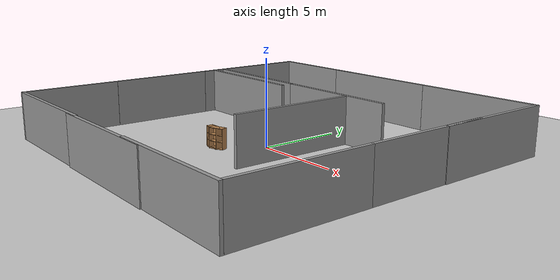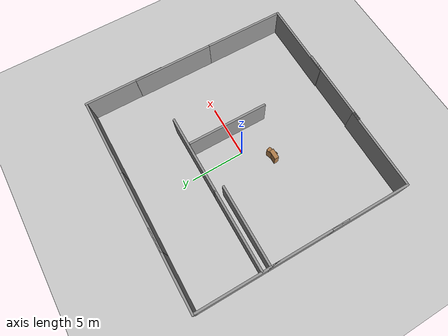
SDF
<sdf version="1.7">
 <world name="default">
  <light name="sun" type="directional">
   <pose>0 0 10 0 -0 0</pose>
   <diffuse>0.8 0.8 0.8 1</diffuse>
   <specular>0.2 0.2 0.2 1</specular>
   <attenuation>
    <range>1000</range>
    <constant>0.9</constant>
    <linear>0.01</linear>
    <quadratic>0.001</quadratic>
   </attenuation>
   <direction>-0.5 0.1 -0.9</direction>
   <spot><inner_angle>0</inner_angle><outer_angle>0</outer_angle><falloff>0</falloff></spot>
  </light>
  <model name="ground_plane">
   <static>1</static>
   <link name="link">
    <collision name="collision">
     <geometry><plane><normal>0 0 1</normal><size>100 100</size></plane></geometry>
     <surface>
      <contact><collide_bitmask>65535</collide_bitmask></contact>
      <friction><ode><mu>100</mu><mu2>50</mu2></ode></friction>
     </surface>
    </collision>
    <visual name="visual">
     <cast_shadows>0</cast_shadows>
     <geometry><plane><normal>0 0 1</normal><size>100 100</size></plane></geometry>
     <material>
      <script><uri>file://media/materials/scripts/gazebo.material</uri><name>Gazebo/Grey</name></script>
     </material>
    </visual>
   </link>
  </model>
  <gravity>0 0 -9.8</gravity>
  <magnetic_field>6e-06 2.3e-05 -4.2e-05</magnetic_field>
  <atmosphere type="adiabatic"/>
  <physics type="ode">
   <max_step_size>0.001</max_step_size>
   <real_time_factor>1</real_time_factor>
   <real_time_update_rate>1000</real_time_update_rate>
  </physics>
  <scene><ambient>0.4 0.4 0.4 1</ambient><background>0.7 0.7 0.7 1</background><shadows>1</shadows></scene>
  <audio><device>default</device></audio>
  <spherical_coordinates>
   <surface_model>EARTH_WGS84</surface_model>
   <latitude_deg>0</latitude_deg>
   <longitude_deg>0</longitude_deg>
   <elevation>0</elevation>
   <heading_deg>0</heading_deg>
  </spherical_coordinates>
  <model name="grey_wall_6">
   <static>1</static>
   <link name="link">
    <pose>0 0 1.4 0 -0 0</pose>
    <collision name="collision"><geometry><box><size>7.5 0.2 2.8</size></box></geometry></collision>
    <visual name="visual">
     <cast_shadows>0</cast_shadows>
     <geometry><box><size>7.5 0.2 2.8</size></box></geometry>
     <material>
      <script>
       <uri>model://grey_wall/materials/scripts</uri>
       <uri>model://grey_wall/materials/textures</uri>
       <name>vrc/grey_wall</name>
      </script>
     </material>
    </visual>
   </link>
   <pose>-6.23831 10.0107 0 0 -0 0</pose>
  </model>
  <model name="grey_wall_6_clone">
   <static>1</static>
   <link name="link">
    <pose>0 0 1.4 0 -0 0</pose>
    <collision name="collision"><geometry><box><size>7.5 0.2 2.8</size></box></geometry></collision>
    <visual name="visual">
     <cast_shadows>0</cast_shadows>
     <geometry><box><size>7.5 0.2 2.8</size></box></geometry>
     <material>
      <script>
       <uri>model://grey_wall/materials/scripts</uri>
       <uri>model://grey_wall/materials/textures</uri>
       <name>vrc/grey_wall</name>
      </script>
     </material>
    </visual>
   </link>
   <pose>-1.00433 10.0016 0 0 -0 0</pose>
  </model>
  <model name="grey_wall_1_clone">
   <static>1</static>
   <link name="link">
    <pose>0 0 1.4 0 -0 0</pose>
    <collision name="collision"><geometry><box><size>7.5 0.2 2.8</size></box></geometry></collision>
    <visual name="visual">
     <cast_shadows>0</cast_shadows>
     <geometry><box><size>7.5 0.2 2.8</size></box></geometry>
     <material>
      <script>
       <uri>model://grey_wall/materials/scripts</uri>
       <uri>model://grey_wall/materials/textures</uri>
       <name>vrc/grey_wall</name>
      </script>
     </material>
    </visual>
   </link>
   <pose>-9.99806 -0.262151 0 0 0 -1.5814</pose>
  </model>
  <model name="grey_wall_1_clone_clone">
   <static>1</static>
   <link name="link">
    <pose>0 0 1.4 0 -0 0</pose>
    <collision name="collision"><geometry><box><size>7.5 0.2 2.8</size></box></geometry></collision>
    <visual name="visual">
     <cast_shadows>0</cast_shadows>
     <geometry><box><size>7.5 0.2 2.8</size></box></geometry>
     <material>
      <script>
       <uri>model://grey_wall/materials/scripts</uri>
       <uri>model://grey_wall/materials/textures</uri>
       <name>vrc/grey_wall</name>
      </script>
     </material>
    </visual>
   </link>
   <pose>-10.0661 -6.15561 0 0 0 -1.5814</pose>
  </model>
  <model name="grey_wall_6_clone_0">
   <static>1</static>
   <link name="link">
    <pose>0 0 1.4 0 -0 0</pose>
    <collision name="collision"><geometry><box><size>7.5 0.2 2.8</size></box></geometry></collision>
    <visual name="visual">
     <cast_shadows>0</cast_shadows>
     <geometry><box><size>7.5 0.2 2.8</size></box></geometry>
     <material>
      <script>
       <uri>model://grey_wall/materials/scripts</uri>
       <uri>model://grey_wall/materials/textures</uri>
       <name>vrc/grey_wall</name>
      </script>
     </material>
    </visual>
   </link>
   <pose>-6.28155 -9.81063 0 0 -0 0</pose>
  </model>
  <model name="grey_wall_6_clone_0_clone">
   <static>1</static>
   <link name="link">
    <pose>0 0 1.4 0 -0 0</pose>
    <collision name="collision"><geometry><box><size>7.5 0.2 2.8</size></box></geometry></collision>
    <visual name="visual">
     <cast_shadows>0</cast_shadows>
     <geometry><box><size>7.5 0.2 2.8</size></box></geometry>
     <material>
      <script>
       <uri>model://grey_wall/materials/scripts</uri>
       <uri>model://grey_wall/materials/textures</uri>
       <name>vrc/grey_wall</name>
      </script>
     </material>
    </visual>
   </link>
   <pose>0.394006 -9.87734 0 0 -0 0</pose>
  </model>
  <model name="grey_wall_6_clone_0_clone_clone">
   <static>1</static>
   <link name="link">
    <pose>0 0 1.4 0 -0 0</pose>
    <collision name="collision"><geometry><box><size>7.5 0.2 2.8</size></box></geometry></collision>
    <visual name="visual">
     <cast_shadows>0</cast_shadows>
     <geometry><box><size>7.5 0.2 2.8</size></box></geometry>
     <material>
      <script>
       <uri>model://grey_wall/materials/scripts</uri>
       <uri>model://grey_wall/materials/textures</uri>
       <name>vrc/grey_wall</name>
      </script>
     </material>
    </visual>
   </link>
   <pose>6.20069 -9.81461 0 0 -0 0</pose>
  </model>
  <model name="grey_wall_1_clone_clone_clone">
   <static>1</static>
   <link name="link">
    <pose>0 0 1.4 0 -0 0</pose>
    <collision name="collision"><geometry><box><size>7.5 0.2 2.8</size></box></geometry></collision>
    <visual name="visual">
     <cast_shadows>0</cast_shadows>
     <geometry><box><size>7.5 0.2 2.8</size></box></geometry>
     <material>
      <script>
       <uri>model://grey_wall/materials/scripts</uri>
       <uri>model://grey_wall/materials/textures</uri>
       <name>vrc/grey_wall</name>
      </script>
     </material>
    </visual>
   </link>
   <pose>9.8912 -5.98839 0 0 0 -1.5814</pose>
  </model>
  <model name="grey_wall_1_clone_clone_clone_clone">
   <static>1</static>
   <link name="link">
    <pose>0 0 1.4 0 -0 0</pose>
    <collision name="collision"><geometry><box><size>7.5 0.2 2.8</size></box></geometry></collision>
    <visual name="visual">
     <cast_shadows>0</cast_shadows>
     <geometry><box><size>7.5 0.2 2.8</size></box></geometry>
     <material>
      <script>
       <uri>model://grey_wall/materials/scripts</uri>
       <uri>model://grey_wall/materials/textures</uri>
       <name>vrc/grey_wall</name>
      </script>
     </material>
    </visual>
   </link>
   <pose>9.96544 1.47963 0 0 0 -1.5814</pose>
  </model>
  <model name="grey_wall_1_clone_clone_clone_clone_clone">
   <static>1</static>
   <link name="link">
    <pose>0 0 1.4 0 -0 0</pose>
    <collision name="collision"><geometry><box><size>7.5 0.2 2.8</size></box></geometry></collision>
    <visual name="visual">
     <cast_shadows>0</cast_shadows>
     <geometry><box><size>7.5 0.2 2.8</size></box></geometry>
     <material>
      <script>
       <uri>model://grey_wall/materials/scripts</uri>
       <uri>model://grey_wall/materials/textures</uri>
       <name>vrc/grey_wall</name>
      </script>
     </material>
    </visual>
   </link>
   <pose>10.049 6.3613 0 0 0 -1.5814</pose>
  </model>
  <model name="grey_wall_6_clone_clone">
   <static>1</static>
   <link name="link">
    <pose>0 0 1.4 0 -0 0</pose>
    <collision name="collision"><geometry><box><size>7.5 0.2 2.8</size></box></geometry></collision>
    <visual name="visual">
     <cast_shadows>0</cast_shadows>
     <geometry><box><size>7.5 0.2 2.8</size></box></geometry>
     <material>
      <script>
       <uri>model://grey_wall/materials/scripts</uri>
       <uri>model://grey_wall/materials/textures</uri>
       <name>vrc/grey_wall</name>
      </script>
     </material>
    </visual>
   </link>
   <pose>6.43238 10.0043 0 0 -0 0</pose>
  </model>
  <model name="grey_wall_6_clone_1">
   <static>1</static>
   <link name="link">
    <pose>0 0 1.4 0 -0 0</pose>
    <collision name="collision"><geometry><box><size>7.5 0.2 2.8</size></box></geometry></collision>
    <visual name="visual">
     <cast_shadows>0</cast_shadows>
     <geometry><box><size>7.5 0.2 2.8</size></box></geometry>
     <material>
      <script>
       <uri>model://grey_wall/materials/scripts</uri>
       <uri>model://grey_wall/materials/textures</uri>
       <name>vrc/grey_wall</name>
      </script>
     </material>
    </visual>
   </link>
   <pose>-6.22371 4.03713 0 0 -0 0</pose>
  </model>
  <model name="grey_wall_6_clone_1_clone">
   <static>1</static>
   <link name="link">
    <pose>0 0 1.4 0 -0 0</pose>
    <collision name="collision"><geometry><box><size>7.5 0.2 2.8</size></box></geometry></collision>
    <visual name="visual">
     <cast_shadows>0</cast_shadows>
     <geometry><box><size>7.5 0.2 2.8</size></box></geometry>
     <material>
      <script>
       <uri>model://grey_wall/materials/scripts</uri>
       <uri>model://grey_wall/materials/textures</uri>
       <name>vrc/grey_wall</name>
      </script>
     </material>
    </visual>
   </link>
   <pose>1.1226 4.0313 0 0 -0 0</pose>
  </model>
  <model name="grey_wall_1_clone_clone_clone_clone_clone_0">
   <static>1</static>
   <link name="link">
    <pose>0 0 1.4 0 -0 0</pose>
    <collision name="collision"><geometry><box><size>7.5 0.2 2.8</size></box></geometry></collision>
    <visual name="visual">
     <cast_shadows>0</cast_shadows>
     <geometry><box><size>7.5 0.2 2.8</size></box></geometry>
     <material>
      <script>
       <uri>model://grey_wall/materials/scripts</uri>
       <uri>model://grey_wall/materials/textures</uri>
       <name>vrc/grey_wall</name>
      </script>
     </material>
    </visual>
   </link>
   <pose>2.10454 0.159477 0 0 0 -1.5814</pose>
  </model>
  <model name="grey_wall_1_clone_0">
   <static>1</static>
   <link name="link">
    <pose>0 0 1.4 0 -0 0</pose>
    <collision name="collision"><geometry><box><size>7.5 0.2 2.8</size></box></geometry></collision>
    <visual name="visual">
     <cast_shadows>0</cast_shadows>
     <geometry><box><size>7.5 0.2 2.8</size></box></geometry>
     <material>
      <script>
       <uri>model://grey_wall/materials/scripts</uri>
       <uri>model://grey_wall/materials/textures</uri>
       <name>vrc/grey_wall</name>
      </script>
     </material>
    </visual>
   </link>
   <pose>-6.27914 3.27804 0 0 -0 0</pose>
  </model>
  <model name="grey_wall_1_clone_clone_0">
   <static>1</static>
   <link name="link">
    <pose>0 0 1.4 0 -0 0</pose>
    <collision name="collision"><geometry><box><size>7.5 0.2 2.8</size></box></geometry></collision>
    <visual name="visual">
     <cast_shadows>0</cast_shadows>
     <geometry><box><size>7.5 0.2 2.8</size></box></geometry>
     <material>
      <script>
       <uri>model://grey_wall/materials/scripts</uri>
       <uri>model://grey_wall/materials/textures</uri>
       <name>vrc/grey_wall</name>
      </script>
     </material>
    </visual>
   </link>
   <pose>-9.92841 6.17314 0 0 0 -1.5814</pose>
  </model>
  <model name="bookshelf">
   <static>1</static>
   <link name="link">
    <inertial><mass>1</mass></inertial>
    <collision name="back">
     <pose>0 0.005 0.6 0 -0 0</pose>
     <geometry><box><size>0.9 0.01 1.2</size></box></geometry>
    </collision>
    <visual name="visual1">
     <pose>0 0.005 0.6 0 -0 0</pose>
     <geometry><box><size>0.9 0.01 1.2</size></box></geometry>
     <material>
      <script><uri>file://media/materials/scripts/gazebo.material</uri><name>Gazebo/Wood</name></script>
     </material>
    </visual>
    <collision name="left_side">
     <pose>0.45 -0.195 0.6 0 -0 0</pose>
     <geometry><box><size>0.02 0.4 1.2</size></box></geometry>
    </collision>
    <visual name="visual2">
     <pose>0.45 -0.195 0.6 0 -0 0</pose>
     <geometry><box><size>0.02 0.4 1.2</size></box></geometry>
     <material>
      <script><uri>file://media/materials/scripts/gazebo.material</uri><name>Gazebo/Wood</name></script>
     </material>
    </visual>
    <collision name="right_side">
     <pose>-0.45 -0.195 0.6 0 -0 0</pose>
     <geometry><box><size>0.02 0.4 1.2</size></box></geometry>
    </collision>
    <visual name="visual3">
     <pose>-0.45 -0.195 0.6 0 -0 0</pose>
     <geometry><box><size>0.02 0.4 1.2</size></box></geometry>
     <material>
      <script><uri>file://media/materials/scripts/gazebo.material</uri><name>Gazebo/Wood</name></script>
     </material>
    </visual>
    <collision name="bottom">
     <pose>0 -0.195 0.03 0 -0 0</pose>
     <geometry><box><size>0.88 0.4 0.06</size></box></geometry>
    </collision>
    <visual name="visual4">
     <pose>0 -0.195 0.03 0 -0 0</pose>
     <geometry><box><size>0.88 0.4 0.06</size></box></geometry>
     <material>
      <script><uri>file://media/materials/scripts/gazebo.material</uri><name>Gazebo/Wood</name></script>
     </material>
    </visual>
    <collision name="top">
     <pose>0 -0.195 1.19 0 -0 0</pose>
     <geometry><box><size>0.88 0.4 0.02</size></box></geometry>
    </collision>
    <visual name="visual5">
     <pose>0 -0.195 1.19 0 -0 0</pose>
     <geometry><box><size>0.88 0.4 0.02</size></box></geometry>
     <material>
      <script><uri>file://media/materials/scripts/gazebo.material</uri><name>Gazebo/Wood</name></script>
     </material>
    </visual>
    <collision name="low_shelf">
     <pose>0 -0.195 0.43 0 -0 0</pose>
     <geometry><box><size>0.88 0.4 0.02</size></box></geometry>
    </collision>
    <visual name="visual6">
     <pose>0 -0.195 0.43 0 -0 0</pose>
     <geometry><box><size>0.88 0.4 0.02</size></box></geometry>
     <material>
      <script><uri>file://media/materials/scripts/gazebo.material</uri><name>Gazebo/Wood</name></script>
     </material>
    </visual>
    <collision name="high_shelf">
     <pose>0 -0.195 0.8 0 -0 0</pose>
     <geometry><box><size>0.88 0.4 0.02</size></box></geometry>
    </collision>
    <visual name="visual7">
     <pose>0 -0.195 0.8 0 -0 0</pose>
     <geometry><box><size>0.88 0.4 0.02</size></box></geometry>
     <material>
      <script><uri>file://media/materials/scripts/gazebo.material</uri><name>Gazebo/Wood</name></script>
     </material>
    </visual>
   </link>
   <pose>-1.86682 -2.02438 0 0 -0 0</pose>
  </model>
  <model name="Apriltag36_11_00000">
   <link name="main">
    <visual name="main_Visual">
     <geometry><box><size>0.15 0.15 0.01</size></box></geometry>
     <material>
      <script>
       <uri>model://Apriltag36_11_00000/materials/scripts</uri>
       <uri>model://Apriltag36_11_00000/materials/textures</uri>
       <name>Apriltag36_11_00000</name>
      </script>
     </material>
    </visual>
   </link>
   <static>1</static>
   <pose>-1.85509 -2.01935 0.2 -1.57079 1.57079 3.14159</pose>
  </model>
  <model name="bookshelf_0">
   <static>1</static>
   <link name="link">
    <inertial><mass>1</mass></inertial>
    <collision name="back">
     <pose>0 0.005 0.6 0 -0 0</pose>
     <geometry><box><size>0.9 0.01 1.2</size></box></geometry>
    </collision>
    <visual name="visual1">
     <pose>0 0.005 0.6 0 -0 0</pose>
     <geometry><box><size>0.9 0.01 1.2</size></box></geometry>
     <material>
      <script><uri>file://media/materials/scripts/gazebo.material</uri><name>Gazebo/Wood</name></script>
     </material>
    </visual>
    <collision name="left_side">
     <pose>0.45 -0.195 0.6 0 -0 0</pose>
     <geometry><box><size>0.02 0.4 1.2</size></box></geometry>
    </collision>
    <visual name="visual2">
     <pose>0.45 -0.195 0.6 0 -0 0</pose>
     <geometry><box><size>0.02 0.4 1.2</size></box></geometry>
     <material>
      <script><uri>file://media/materials/scripts/gazebo.material</uri><name>Gazebo/Wood</name></script>
     </material>
    </visual>
    <collision name="right_side">
     <pose>-0.45 -0.195 0.6 0 -0 0</pose>
     <geometry><box><size>0.02 0.4 1.2</size></box></geometry>
    </collision>
    <visual name="visual3">
     <pose>-0.45 -0.195 0.6 0 -0 0</pose>
     <geometry><box><size>0.02 0.4 1.2</size></box></geometry>
     <material>
      <script><uri>file://media/materials/scripts/gazebo.material</uri><name>Gazebo/Wood</name></script>
     </material>
    </visual>
    <collision name="bottom">
     <pose>0 -0.195 0.03 0 -0 0</pose>
     <geometry><box><size>0.88 0.4 0.06</size></box></geometry>
    </collision>
    <visual name="visual4">
     <pose>0 -0.195 0.03 0 -0 0</pose>
     <geometry><box><size>0.88 0.4 0.06</size></box></geometry>
     <material>
      <script><uri>file://media/materials/scripts/gazebo.material</uri><name>Gazebo/Wood</name></script>
     </material>
    </visual>
    <collision name="top">
     <pose>0 -0.195 1.19 0 -0 0</pose>
     <geometry><box><size>0.88 0.4 0.02</size></box></geometry>
    </collision>
    <visual name="visual5">
     <pose>0 -0.195 1.19 0 -0 0</pose>
     <geometry><box><size>0.88 0.4 0.02</size></box></geometry>
     <material>
      <script><uri>file://media/materials/scripts/gazebo.material</uri><name>Gazebo/Wood</name></script>
     </material>
    </visual>
    <collision name="low_shelf">
     <pose>0 -0.195 0.43 0 -0 0</pose>
     <geometry><box><size>0.88 0.4 0.02</size></box></geometry>
    </collision>
    <visual name="visual6">
     <pose>0 -0.195 0.43 0 -0 0</pose>
     <geometry><box><size>0.88 0.4 0.02</size></box></geometry>
     <material>
      <script><uri>file://media/materials/scripts/gazebo.material</uri><name>Gazebo/Wood</name></script>
     </material>
    </visual>
    <collision name="high_shelf">
     <pose>0 -0.195 0.8 0 -0 0</pose>
     <geometry><box><size>0.88 0.4 0.02</size></box></geometry>
    </collision>
    <visual name="visual7">
     <pose>0 -0.195 0.8 0 -0 0</pose>
     <geometry><box><size>0.88 0.4 0.02</size></box></geometry>
     <material>
      <script><uri>file://media/materials/scripts/gazebo.material</uri><name>Gazebo/Wood</name></script>
     </material>
    </visual>
   </link>
   <pose>-1.6418 -1.99693 0 0 -0 0.329013</pose>
  </model>
 </world>
</sdf>
